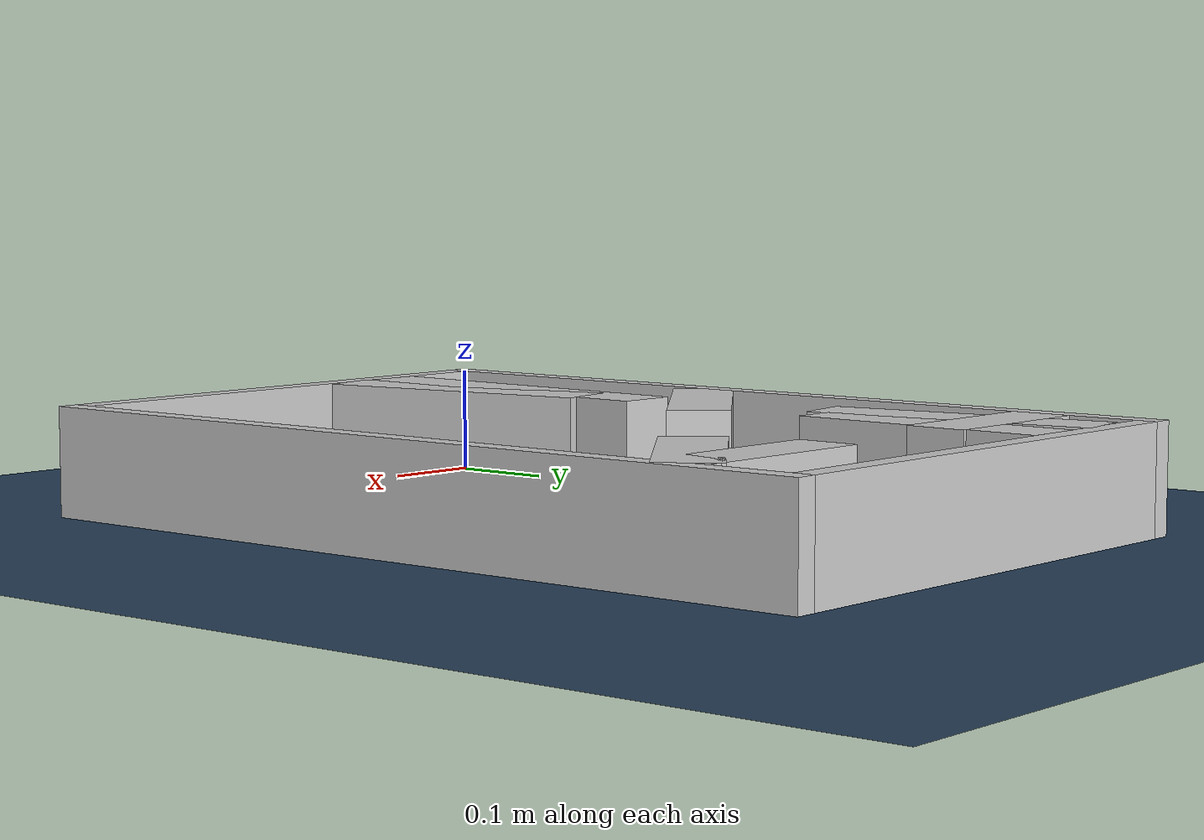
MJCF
<?xml version="1.0" ?>
<mujoco model="generated_real_template">
  <compiler angle="degree"/>
  <option timestep="0.002" integrator="implicitfast" iterations="100" cone="elliptic"/>
  <default>
    <geom density="1"/>
  </default>
  <asset>
    <texture builtin="gradient" height="3072" rgb1="0.3 0.5 0.7" rgb2="0 0 0" type="skybox" width="512"/>
    <texture builtin="checker" height="300" mark="edge" markrgb="0.8 0.8 0.8" name="groundplane" rgb1="0.2 0.3 0.4" rgb2="0.1 0.2 0.3" type="2d" width="300"/>
    <material name="groundplane" reflectance="0.2" texrepeat="5 5" texture="groundplane" texuniform="true"/>
  </asset>
  <worldbody>
    <light dir="0 0 -1" directional="true" pos="0 0 1.5"/>
    <geom name="floor" type="plane" condim="4" friction="0.5 0.005 0.001" material="groundplane" size="0 0 0.05"/>
    <body name="walls">
      <geom name="wall_boundary_left" type="box" condim="4" friction="1.0 0.005 0.0001" rgba="0.8 0.8 0.8 1" pos="-0.010000 0.387500 0.050000" euler="0 0 0.000000" size="0.010000 0.407500 0.050000"/>
      <geom name="wall_boundary_right" type="box" condim="4" friction="1.0 0.005 0.0001" rgba="0.8 0.8 0.8 1" pos="0.500000 0.387500 0.050000" euler="0 0 0.000000" size="0.010000 0.407500 0.050000"/>
      <geom name="wall_boundary_bottom" type="box" condim="4" friction="1.0 0.005 0.0001" rgba="0.8 0.8 0.8 1" pos="0.245000 -0.010000 0.050000" euler="0 0 0.000000" size="0.245000 0.010000 0.050000"/>
      <geom name="wall_boundary_top" type="box" condim="4" friction="1.0 0.005 0.0001" rgba="0.8 0.8 0.8 1" pos="0.245000 0.785000 0.050000" euler="0 0 0.000000" size="0.245000 0.010000 0.050000"/>
      <geom name="wall_inner_1_1" type="box" condim="4" friction="1.0 0.005 0.0001" rgba="0.8 0.8 0.8 1" pos="0.086199 0.374261 0.050000" euler="0 0 37.040037" size="0.107989 0.028500 0.050000"/>
      <geom name="wall_inner_1_2" type="box" condim="4" friction="1.0 0.005 0.0001" rgba="0.8 0.8 0.8 1" pos="0.415938 0.623099 0.050000" euler="0 0 37.040037" size="0.092785 0.028500 0.050000"/>
      <geom name="wall_inner_2_1" type="box" condim="4" friction="1.0 0.005 0.0001" rgba="0.8 0.8 0.8 1" pos="0.398410 0.672280 0.050000" euler="0 0 178.564124" size="0.091619 0.028500 0.050000"/>
      <geom name="wall_inner_2_2" type="box" condim="4" friction="1.0 0.005 0.0001" rgba="0.8 0.8 0.8 1" pos="0.080379 0.680251 0.050000" euler="0 0 178.564124" size="0.080404 0.028500 0.050000"/>
      <geom name="wall_inner_3_1" type="box" condim="4" friction="1.0 0.005 0.0001" rgba="0.8 0.8 0.8 1" pos="0.146441 0.135494 0.050000" euler="0 0 98.323871" size="0.136937 0.028500 0.050000"/>
      <geom name="wall_inner_3_2" type="box" condim="4" friction="1.0 0.005 0.0001" rgba="0.8 0.8 0.8 1" pos="0.072021 0.644144 0.050000" euler="0 0 98.323871" size="0.132249 0.028500 0.050000"/>
      <geom name="wall_inner_4_1" type="box" condim="4" friction="1.0 0.005 0.0001" rgba="0.8 0.8 0.8 1" pos="0.112920 0.168167 0.050000" euler="0 0 88.239281" size="0.168246 0.028500 0.050000"/>
      <geom name="wall_inner_4_2" type="box" condim="4" friction="1.0 0.005 0.0001" rgba="0.8 0.8 0.8 1" pos="0.127886 0.655011 0.050000" euler="0 0 88.239281" size="0.120045 0.028500 0.050000"/>
    </body>
  </worldbody>
</mujoco>
